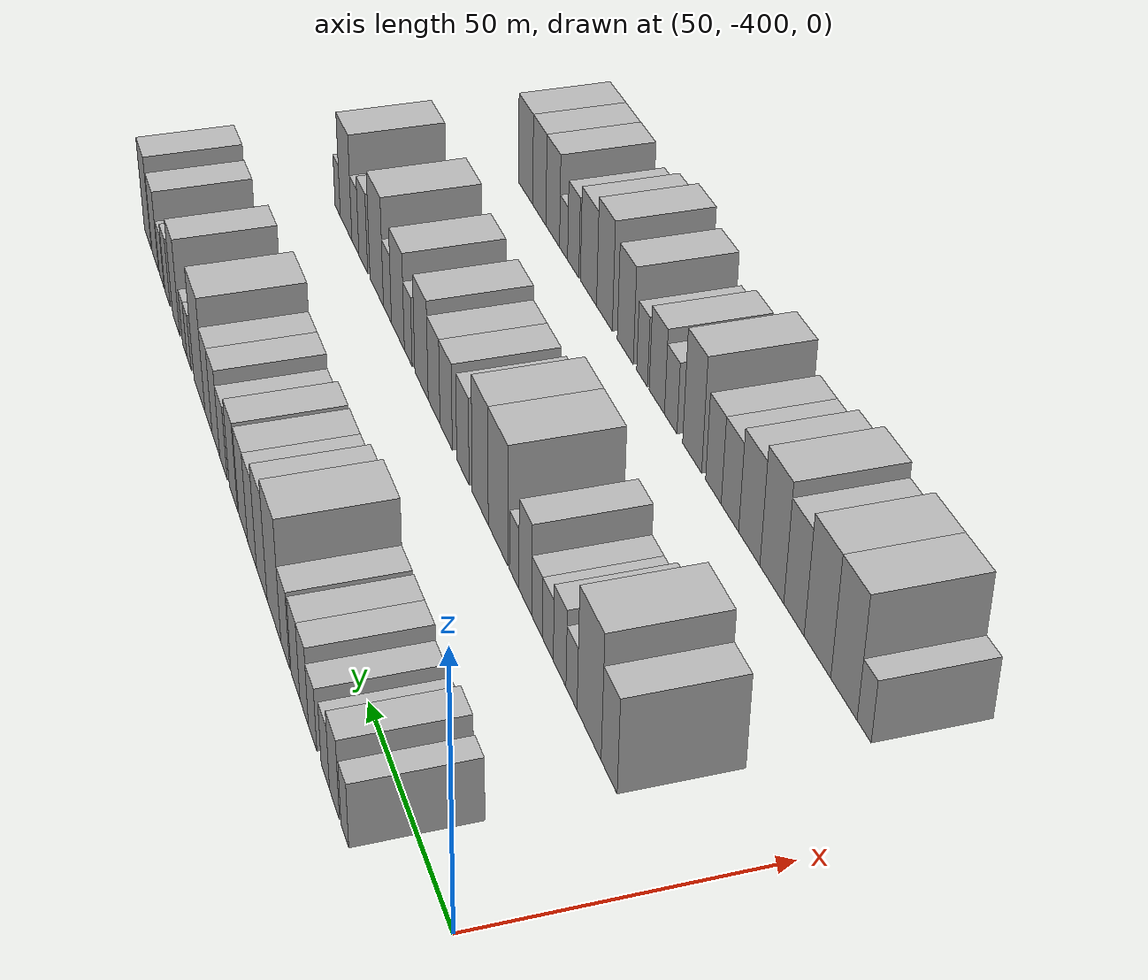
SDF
<sdf version="1.6">
 <world name="default">
  <model name="building_1">
   <static>1</static>
   <pose>50.0000 -377.5273 0 0.000000 0.000000 0.000000</pose>
   <link name="link">
    <pose>0 0 6.00 0 0 0</pose>
    <collision name="collision"><geometry><box><size>20.0000 4.9454 12.0000</size></box></geometry></collision>
    <visual name="visual">
     <cast_shadows>0</cast_shadows>
     <geometry><box><size>20.0000 4.9454 12.0000</size></box></geometry>
     <material>
      <script>
       <uri>model://HANNAS_wall/materials/scripts</uri>
       <uri>model://HANNAS_wall/materials/textures</uri>
       <name>vrc/HANNAS_wall</name>
      </script>
     </material>
    </visual>
   </link>
  </model>
  <model name="building_2">
   <static>1</static>
   <pose>50.0000 -370.7680 0 0.000000 0.000000 0.000000</pose>
   <link name="link">
    <pose>0 0 7.50 0 0 0</pose>
    <collision name="collision"><geometry><box><size>20.0000 6.5734 15.0000</size></box></geometry></collision>
    <visual name="visual">
     <cast_shadows>0</cast_shadows>
     <geometry><box><size>20.0000 6.5734 15.0000</size></box></geometry>
     <material>
      <script>
       <uri>model://HANNAS_wall/materials/scripts</uri>
       <uri>model://HANNAS_wall/materials/textures</uri>
       <name>vrc/HANNAS_wall</name>
      </script>
     </material>
    </visual>
   </link>
  </model>
  <model name="building_3">
   <static>1</static>
   <pose>50.0000 -364.6494 0 0.000000 0.000000 0.000000</pose>
   <link name="link">
    <pose>0 0 6.00 0 0 0</pose>
    <collision name="collision"><geometry><box><size>20.0000 5.6638 12.0000</size></box></geometry></collision>
    <visual name="visual">
     <cast_shadows>0</cast_shadows>
     <geometry><box><size>20.0000 5.6638 12.0000</size></box></geometry>
     <material>
      <script>
       <uri>model://HANNAS_wall/materials/scripts</uri>
       <uri>model://HANNAS_wall/materials/textures</uri>
       <name>vrc/HANNAS_wall</name>
      </script>
     </material>
    </visual>
   </link>
  </model>
  <model name="building_4">
   <static>1</static>
   <pose>50.0000 -355.8359 0 0.000000 0.000000 0.000000</pose>
   <link name="link">
    <pose>0 0 6.00 0 0 0</pose>
    <collision name="collision"><geometry><box><size>20.0000 5.9631 12.0000</size></box></geometry></collision>
    <visual name="visual">
     <cast_shadows>0</cast_shadows>
     <geometry><box><size>20.0000 5.9631 12.0000</size></box></geometry>
     <material>
      <script>
       <uri>model://HANNAS_wall/materials/scripts</uri>
       <uri>model://HANNAS_wall/materials/textures</uri>
       <name>vrc/HANNAS_wall</name>
      </script>
     </material>
    </visual>
   </link>
  </model>
  <model name="building_5">
   <static>1</static>
   <pose>50.0000 -349.7534 0 0.000000 0.000000 0.000000</pose>
   <link name="link">
    <pose>0 0 7.50 0 0 0</pose>
    <collision name="collision"><geometry><box><size>20.0000 6.2020 15.0000</size></box></geometry></collision>
    <visual name="visual">
     <cast_shadows>0</cast_shadows>
     <geometry><box><size>20.0000 6.2020 15.0000</size></box></geometry>
     <material>
      <script>
       <uri>model://HANNAS_wall/materials/scripts</uri>
       <uri>model://HANNAS_wall/materials/textures</uri>
       <name>vrc/HANNAS_wall</name>
      </script>
     </material>
    </visual>
   </link>
  </model>
  <model name="building_6">
   <static>1</static>
   <pose>50.0000 -343.3390 0 0.000000 0.000000 0.000000</pose>
   <link name="link">
    <pose>0 0 7.50 0 0 0</pose>
    <collision name="collision"><geometry><box><size>20.0000 6.6268 15.0000</size></box></geometry></collision>
    <visual name="visual">
     <cast_shadows>0</cast_shadows>
     <geometry><box><size>20.0000 6.6268 15.0000</size></box></geometry>
     <material>
      <script>
       <uri>model://HANNAS_wall/materials/scripts</uri>
       <uri>model://HANNAS_wall/materials/textures</uri>
       <name>vrc/HANNAS_wall</name>
      </script>
     </material>
    </visual>
   </link>
  </model>
  <model name="building_7">
   <static>1</static>
   <pose>50.0000 -335.6102 0 0.000000 0.000000 0.000000</pose>
   <link name="link">
    <pose>0 0 7.50 0 0 0</pose>
    <collision name="collision"><geometry><box><size>20.0000 6.8309 15.0000</size></box></geometry></collision>
    <visual name="visual">
     <cast_shadows>0</cast_shadows>
     <geometry><box><size>20.0000 6.8309 15.0000</size></box></geometry>
     <material>
      <script>
       <uri>model://HANNAS_wall/materials/scripts</uri>
       <uri>model://HANNAS_wall/materials/textures</uri>
       <name>vrc/HANNAS_wall</name>
      </script>
     </material>
    </visual>
   </link>
  </model>
  <model name="building_8">
   <static>1</static>
   <pose>50.0000 -326.6663 0 0.000000 0.000000 0.000000</pose>
   <link name="link">
    <pose>0 0 12.00 0 0 0</pose>
    <collision name="collision"><geometry><box><size>20.0000 11.0569 24.0000</size></box></geometry></collision>
    <visual name="visual">
     <cast_shadows>0</cast_shadows>
     <geometry><box><size>20.0000 11.0569 24.0000</size></box></geometry>
     <material>
      <script>
       <uri>model://HANNAS_wall/materials/scripts</uri>
       <uri>model://HANNAS_wall/materials/textures</uri>
       <name>vrc/HANNAS_wall</name>
      </script>
     </material>
    </visual>
   </link>
  </model>
  <model name="building_9">
   <static>1</static>
   <pose>50.0000 -316.6502 0 0.000000 0.000000 0.000000</pose>
   <link name="link">
    <pose>0 0 10.50 0 0 0</pose>
    <collision name="collision"><geometry><box><size>20.0000 8.9752 21.0000</size></box></geometry></collision>
    <visual name="visual">
     <cast_shadows>0</cast_shadows>
     <geometry><box><size>20.0000 8.9752 21.0000</size></box></geometry>
     <material>
      <script>
       <uri>model://HANNAS_wall/materials/scripts</uri>
       <uri>model://HANNAS_wall/materials/textures</uri>
       <name>vrc/HANNAS_wall</name>
      </script>
     </material>
    </visual>
   </link>
  </model>
  <model name="building_10">
   <static>1</static>
   <pose>50.0000 -308.2696 0 0.000000 0.000000 0.000000</pose>
   <link name="link">
    <pose>0 0 9.00 0 0 0</pose>
    <collision name="collision"><geometry><box><size>20.0000 7.7861 18.0000</size></box></geometry></collision>
    <visual name="visual">
     <cast_shadows>0</cast_shadows>
     <geometry><box><size>20.0000 7.7861 18.0000</size></box></geometry>
     <material>
      <script>
       <uri>model://HANNAS_wall/materials/scripts</uri>
       <uri>model://HANNAS_wall/materials/textures</uri>
       <name>vrc/HANNAS_wall</name>
      </script>
     </material>
    </visual>
   </link>
  </model>
  <model name="building_11">
   <static>1</static>
   <pose>50.0000 -300.3896 0 0.000000 0.000000 0.000000</pose>
   <link name="link">
    <pose>0 0 9.00 0 0 0</pose>
    <collision name="collision"><geometry><box><size>20.0000 7.9738 18.0000</size></box></geometry></collision>
    <visual name="visual">
     <cast_shadows>0</cast_shadows>
     <geometry><box><size>20.0000 7.9738 18.0000</size></box></geometry>
     <material>
      <script>
       <uri>model://HANNAS_wall/materials/scripts</uri>
       <uri>model://HANNAS_wall/materials/textures</uri>
       <name>vrc/HANNAS_wall</name>
      </script>
     </material>
    </visual>
   </link>
  </model>
  <model name="building_12">
   <static>1</static>
   <pose>50.0000 -291.4953 0 0.000000 0.000000 0.000000</pose>
   <link name="link">
    <pose>0 0 9.00 0 0 0</pose>
    <collision name="collision"><geometry><box><size>20.0000 7.8147 18.0000</size></box></geometry></collision>
    <visual name="visual">
     <cast_shadows>0</cast_shadows>
     <geometry><box><size>20.0000 7.8147 18.0000</size></box></geometry>
     <material>
      <script>
       <uri>model://HANNAS_wall/materials/scripts</uri>
       <uri>model://HANNAS_wall/materials/textures</uri>
       <name>vrc/HANNAS_wall</name>
      </script>
     </material>
    </visual>
   </link>
  </model>
  <model name="building_13">
   <static>1</static>
   <pose>50.0000 -282.0094 0 0.000000 0.000000 0.000000</pose>
   <link name="link">
    <pose>0 0 7.50 0 0 0</pose>
    <collision name="collision"><geometry><box><size>20.0000 7.1573 15.0000</size></box></geometry></collision>
    <visual name="visual">
     <cast_shadows>0</cast_shadows>
     <geometry><box><size>20.0000 7.1573 15.0000</size></box></geometry>
     <material>
      <script>
       <uri>model://HANNAS_wall/materials/scripts</uri>
       <uri>model://HANNAS_wall/materials/textures</uri>
       <name>vrc/HANNAS_wall</name>
      </script>
     </material>
    </visual>
   </link>
  </model>
  <model name="building_14">
   <static>1</static>
   <pose>50.0000 -274.5879 0 0.000000 0.000000 0.000000</pose>
   <link name="link">
    <pose>0 0 9.00 0 0 0</pose>
    <collision name="collision"><geometry><box><size>20.0000 7.6856 18.0000</size></box></geometry></collision>
    <visual name="visual">
     <cast_shadows>0</cast_shadows>
     <geometry><box><size>20.0000 7.6856 18.0000</size></box></geometry>
     <material>
      <script>
       <uri>model://HANNAS_wall/materials/scripts</uri>
       <uri>model://HANNAS_wall/materials/textures</uri>
       <name>vrc/HANNAS_wall</name>
      </script>
     </material>
    </visual>
   </link>
  </model>
  <model name="building_15">
   <static>1</static>
   <pose>50.0000 -267.0893 0 0.000000 0.000000 0.000000</pose>
   <link name="link">
    <pose>0 0 9.00 0 0 0</pose>
    <collision name="collision"><geometry><box><size>20.0000 7.3118 18.0000</size></box></geometry></collision>
    <visual name="visual">
     <cast_shadows>0</cast_shadows>
     <geometry><box><size>20.0000 7.3118 18.0000</size></box></geometry>
     <material>
      <script>
       <uri>model://HANNAS_wall/materials/scripts</uri>
       <uri>model://HANNAS_wall/materials/textures</uri>
       <name>vrc/HANNAS_wall</name>
      </script>
     </material>
    </visual>
   </link>
  </model>
  <model name="building_16">
   <static>1</static>
   <pose>50.0000 -257.5714 0 0.000000 0.000000 0.000000</pose>
   <link name="link">
    <pose>0 0 12.00 0 0 0</pose>
    <collision name="collision"><geometry><box><size>20.0000 11.7239 24.0000</size></box></geometry></collision>
    <visual name="visual">
     <cast_shadows>0</cast_shadows>
     <geometry><box><size>20.0000 11.7239 24.0000</size></box></geometry>
     <material>
      <script>
       <uri>model://HANNAS_wall/materials/scripts</uri>
       <uri>model://HANNAS_wall/materials/textures</uri>
       <name>vrc/HANNAS_wall</name>
      </script>
     </material>
    </visual>
   </link>
  </model>
  <model name="building_17">
   <static>1</static>
   <pose>50.0000 -246.2644 0 0.000000 0.000000 0.000000</pose>
   <link name="link">
    <pose>0 0 6.00 0 0 0</pose>
    <collision name="collision"><geometry><box><size>20.0000 4.8901 12.0000</size></box></geometry></collision>
    <visual name="visual">
     <cast_shadows>0</cast_shadows>
     <geometry><box><size>20.0000 4.8901 12.0000</size></box></geometry>
     <material>
      <script>
       <uri>model://HANNAS_wall/materials/scripts</uri>
       <uri>model://HANNAS_wall/materials/textures</uri>
       <name>vrc/HANNAS_wall</name>
      </script>
     </material>
    </visual>
   </link>
  </model>
  <model name="building_18">
   <static>1</static>
   <pose>50.0000 -241.3413 0 0.000000 0.000000 0.000000</pose>
   <link name="link">
    <pose>0 0 6.00 0 0 0</pose>
    <collision name="collision"><geometry><box><size>20.0000 4.9562 12.0000</size></box></geometry></collision>
    <visual name="visual">
     <cast_shadows>0</cast_shadows>
     <geometry><box><size>20.0000 4.9562 12.0000</size></box></geometry>
     <material>
      <script>
       <uri>model://HANNAS_wall/materials/scripts</uri>
       <uri>model://HANNAS_wall/materials/textures</uri>
       <name>vrc/HANNAS_wall</name>
      </script>
     </material>
    </visual>
   </link>
  </model>
  <model name="building_19">
   <static>1</static>
   <pose>50.0000 -231.6530 0 0.000000 0.000000 0.000000</pose>
   <link name="link">
    <pose>0 0 10.50 0 0 0</pose>
    <collision name="collision"><geometry><box><size>20.0000 8.4202 21.0000</size></box></geometry></collision>
    <visual name="visual">
     <cast_shadows>0</cast_shadows>
     <geometry><box><size>20.0000 8.4202 21.0000</size></box></geometry>
     <material>
      <script>
       <uri>model://HANNAS_wall/materials/scripts</uri>
       <uri>model://HANNAS_wall/materials/textures</uri>
       <name>vrc/HANNAS_wall</name>
      </script>
     </material>
    </visual>
   </link>
  </model>
  <model name="building_20">
   <static>1</static>
   <pose>50.0000 -221.2663 0 0.000000 0.000000 0.000000</pose>
   <link name="link">
    <pose>0 0 7.50 0 0 0</pose>
    <collision name="collision"><geometry><box><size>20.0000 6.3533 15.0000</size></box></geometry></collision>
    <visual name="visual">
     <cast_shadows>0</cast_shadows>
     <geometry><box><size>20.0000 6.3533 15.0000</size></box></geometry>
     <material>
      <script>
       <uri>model://HANNAS_wall/materials/scripts</uri>
       <uri>model://HANNAS_wall/materials/textures</uri>
       <name>vrc/HANNAS_wall</name>
      </script>
     </material>
    </visual>
   </link>
  </model>
  <model name="building_21">
   <static>1</static>
   <pose>50.0000 -214.2123 0 0.000000 0.000000 0.000000</pose>
   <link name="link">
    <pose>0 0 6.00 0 0 0</pose>
    <collision name="collision"><geometry><box><size>20.0000 5.7547 12.0000</size></box></geometry></collision>
    <visual name="visual">
     <cast_shadows>0</cast_shadows>
     <geometry><box><size>20.0000 5.7547 12.0000</size></box></geometry>
     <material>
      <script>
       <uri>model://HANNAS_wall/materials/scripts</uri>
       <uri>model://HANNAS_wall/materials/textures</uri>
       <name>vrc/HANNAS_wall</name>
      </script>
     </material>
    </visual>
   </link>
  </model>
  <model name="building_22">
   <static>1</static>
   <pose>50.0000 -206.1438 0 0.000000 0.000000 0.000000</pose>
   <link name="link">
    <pose>0 0 9.00 0 0 0</pose>
    <collision name="collision"><geometry><box><size>20.0000 8.3824 18.0000</size></box></geometry></collision>
    <visual name="visual">
     <cast_shadows>0</cast_shadows>
     <geometry><box><size>20.0000 8.3824 18.0000</size></box></geometry>
     <material>
      <script>
       <uri>model://HANNAS_wall/materials/scripts</uri>
       <uri>model://HANNAS_wall/materials/textures</uri>
       <name>vrc/HANNAS_wall</name>
      </script>
     </material>
    </visual>
   </link>
  </model>
  <model name="building_23">
   <static>1</static>
   <pose>50.0000 -196.3934 0 0.000000 0.000000 0.000000</pose>
   <link name="link">
    <pose>0 0 10.50 0 0 0</pose>
    <collision name="collision"><geometry><box><size>20.0000 9.1183 21.0000</size></box></geometry></collision>
    <visual name="visual">
     <cast_shadows>0</cast_shadows>
     <geometry><box><size>20.0000 9.1183 21.0000</size></box></geometry>
     <material>
      <script>
       <uri>model://HANNAS_wall/materials/scripts</uri>
       <uri>model://HANNAS_wall/materials/textures</uri>
       <name>vrc/HANNAS_wall</name>
      </script>
     </material>
    </visual>
   </link>
  </model>
  <model name="building_88">
   <static>1</static>
   <pose>90.0000 -376.2433 0 0.000000 0.000000 0.000000</pose>
   <link name="link">
    <pose>0 0 9.00 0 0 0</pose>
    <collision name="collision"><geometry><box><size>20.0000 7.5133 18.0000</size></box></geometry></collision>
    <visual name="visual">
     <cast_shadows>0</cast_shadows>
     <geometry><box><size>20.0000 7.5133 18.0000</size></box></geometry>
     <material>
      <script>
       <uri>model://HANNAS_wall/materials/scripts</uri>
       <uri>model://HANNAS_wall/materials/textures</uri>
       <name>vrc/HANNAS_wall</name>
      </script>
     </material>
    </visual>
   </link>
  </model>
  <model name="building_89">
   <static>1</static>
   <pose>90.0000 -366.6029 0 0.000000 0.000000 0.000000</pose>
   <link name="link">
    <pose>0 0 12.00 0 0 0</pose>
    <collision name="collision"><geometry><box><size>20.0000 11.7676 24.0000</size></box></geometry></collision>
    <visual name="visual">
     <cast_shadows>0</cast_shadows>
     <geometry><box><size>20.0000 11.7676 24.0000</size></box></geometry>
     <material>
      <script>
       <uri>model://HANNAS_wall/materials/scripts</uri>
       <uri>model://HANNAS_wall/materials/textures</uri>
       <name>vrc/HANNAS_wall</name>
      </script>
     </material>
    </visual>
   </link>
  </model>
  <model name="building_90">
   <static>1</static>
   <pose>90.0000 -357.8911 0 0.000000 0.000000 0.000000</pose>
   <link name="link">
    <pose>0 0 6.00 0 0 0</pose>
    <collision name="collision"><geometry><box><size>20.0000 5.6561 12.0000</size></box></geometry></collision>
    <visual name="visual">
     <cast_shadows>0</cast_shadows>
     <geometry><box><size>20.0000 5.6561 12.0000</size></box></geometry>
     <material>
      <script>
       <uri>model://HANNAS_wall/materials/scripts</uri>
       <uri>model://HANNAS_wall/materials/textures</uri>
       <name>vrc/HANNAS_wall</name>
      </script>
     </material>
    </visual>
   </link>
  </model>
  <model name="building_91">
   <static>1</static>
   <pose>90.0000 -351.7477 0 0.000000 0.000000 0.000000</pose>
   <link name="link">
    <pose>0 0 7.50 0 0 0</pose>
    <collision name="collision"><geometry><box><size>20.0000 6.6307 15.0000</size></box></geometry></collision>
    <visual name="visual">
     <cast_shadows>0</cast_shadows>
     <geometry><box><size>20.0000 6.6307 15.0000</size></box></geometry>
     <material>
      <script>
       <uri>model://HANNAS_wall/materials/scripts</uri>
       <uri>model://HANNAS_wall/materials/textures</uri>
       <name>vrc/HANNAS_wall</name>
      </script>
     </material>
    </visual>
   </link>
  </model>
  <model name="building_92">
   <static>1</static>
   <pose>90.0000 -345.4500 0 0.000000 0.000000 0.000000</pose>
   <link name="link">
    <pose>0 0 6.00 0 0 0</pose>
    <collision name="collision"><geometry><box><size>20.0000 5.9646 12.0000</size></box></geometry></collision>
    <visual name="visual">
     <cast_shadows>0</cast_shadows>
     <geometry><box><size>20.0000 5.9646 12.0000</size></box></geometry>
     <material>
      <script>
       <uri>model://HANNAS_wall/materials/scripts</uri>
       <uri>model://HANNAS_wall/materials/textures</uri>
       <name>vrc/HANNAS_wall</name>
      </script>
     </material>
    </visual>
   </link>
  </model>
  <model name="building_93">
   <static>1</static>
   <pose>90.0000 -339.5533 0 0.000000 0.000000 0.000000</pose>
   <link name="link">
    <pose>0 0 6.00 0 0 0</pose>
    <collision name="collision"><geometry><box><size>20.0000 5.8289 12.0000</size></box></geometry></collision>
    <visual name="visual">
     <cast_shadows>0</cast_shadows>
     <geometry><box><size>20.0000 5.8289 12.0000</size></box></geometry>
     <material>
      <script>
       <uri>model://HANNAS_wall/materials/scripts</uri>
       <uri>model://HANNAS_wall/materials/textures</uri>
       <name>vrc/HANNAS_wall</name>
      </script>
     </material>
    </visual>
   </link>
  </model>
  <model name="building_94">
   <static>1</static>
   <pose>90.0000 -333.0238 0 0.000000 0.000000 0.000000</pose>
   <link name="link">
    <pose>0 0 9.00 0 0 0</pose>
    <collision name="collision"><geometry><box><size>20.0000 7.2301 18.0000</size></box></geometry></collision>
    <visual name="visual">
     <cast_shadows>0</cast_shadows>
     <geometry><box><size>20.0000 7.2301 18.0000</size></box></geometry>
     <material>
      <script>
       <uri>model://HANNAS_wall/materials/scripts</uri>
       <uri>model://HANNAS_wall/materials/textures</uri>
       <name>vrc/HANNAS_wall</name>
      </script>
     </material>
    </visual>
   </link>
  </model>
  <model name="building_95">
   <static>1</static>
   <pose>90.0000 -326.6540 0 0.000000 0.000000 0.000000</pose>
   <link name="link">
    <pose>0 0 6.00 0 0 0</pose>
    <collision name="collision"><geometry><box><size>20.0000 5.5095 12.0000</size></box></geometry></collision>
    <visual name="visual">
     <cast_shadows>0</cast_shadows>
     <geometry><box><size>20.0000 5.5095 12.0000</size></box></geometry>
     <material>
      <script>
       <uri>model://HANNAS_wall/materials/scripts</uri>
       <uri>model://HANNAS_wall/materials/textures</uri>
       <name>vrc/HANNAS_wall</name>
      </script>
     </material>
    </visual>
   </link>
  </model>
  <model name="building_96">
   <static>1</static>
   <pose>90.0000 -317.0012 0 0.000000 0.000000 0.000000</pose>
   <link name="link">
    <pose>0 0 12.00 0 0 0</pose>
    <collision name="collision"><geometry><box><size>20.0000 11.7960 24.0000</size></box></geometry></collision>
    <visual name="visual">
     <cast_shadows>0</cast_shadows>
     <geometry><box><size>20.0000 11.7960 24.0000</size></box></geometry>
     <material>
      <script>
       <uri>model://HANNAS_wall/materials/scripts</uri>
       <uri>model://HANNAS_wall/materials/textures</uri>
       <name>vrc/HANNAS_wall</name>
      </script>
     </material>
    </visual>
   </link>
  </model>
  <model name="building_97">
   <static>1</static>
   <pose>90.0000 -305.9926 0 0.000000 0.000000 0.000000</pose>
   <link name="link">
    <pose>0 0 12.00 0 0 0</pose>
    <collision name="collision"><geometry><box><size>20.0000 10.2212 24.0000</size></box></geometry></collision>
    <visual name="visual">
     <cast_shadows>0</cast_shadows>
     <geometry><box><size>20.0000 10.2212 24.0000</size></box></geometry>
     <material>
      <script>
       <uri>model://HANNAS_wall/materials/scripts</uri>
       <uri>model://HANNAS_wall/materials/textures</uri>
       <name>vrc/HANNAS_wall</name>
      </script>
     </material>
    </visual>
   </link>
  </model>
  <model name="building_98">
   <static>1</static>
   <pose>90.0000 -294.7908 0 0.000000 0.000000 0.000000</pose>
   <link name="link">
    <pose>0 0 9.00 0 0 0</pose>
    <collision name="collision"><geometry><box><size>20.0000 8.1825 18.0000</size></box></geometry></collision>
    <visual name="visual">
     <cast_shadows>0</cast_shadows>
     <geometry><box><size>20.0000 8.1825 18.0000</size></box></geometry>
     <material>
      <script>
       <uri>model://HANNAS_wall/materials/scripts</uri>
       <uri>model://HANNAS_wall/materials/textures</uri>
       <name>vrc/HANNAS_wall</name>
      </script>
     </material>
    </visual>
   </link>
  </model>
  <model name="building_99">
   <static>1</static>
   <pose>90.0000 -283.4306 0 0.000000 0.000000 0.000000</pose>
   <link name="link">
    <pose>0 0 9.00 0 0 0</pose>
    <collision name="collision"><geometry><box><size>20.0000 8.5379 18.0000</size></box></geometry></collision>
    <visual name="visual">
     <cast_shadows>0</cast_shadows>
     <geometry><box><size>20.0000 8.5379 18.0000</size></box></geometry>
     <material>
      <script>
       <uri>model://HANNAS_wall/materials/scripts</uri>
       <uri>model://HANNAS_wall/materials/textures</uri>
       <name>vrc/HANNAS_wall</name>
      </script>
     </material>
    </visual>
   </link>
  </model>
  <model name="building_100">
   <static>1</static>
   <pose>90.0000 -274.9121 0 0.000000 0.000000 0.000000</pose>
   <link name="link">
    <pose>0 0 9.00 0 0 0</pose>
    <collision name="collision"><geometry><box><size>20.0000 8.4990 18.0000</size></box></geometry></collision>
    <visual name="visual">
     <cast_shadows>0</cast_shadows>
     <geometry><box><size>20.0000 8.4990 18.0000</size></box></geometry>
     <material>
      <script>
       <uri>model://HANNAS_wall/materials/scripts</uri>
       <uri>model://HANNAS_wall/materials/textures</uri>
       <name>vrc/HANNAS_wall</name>
      </script>
     </material>
    </visual>
   </link>
  </model>
  <model name="building_101">
   <static>1</static>
   <pose>90.0000 -265.7008 0 0.000000 0.000000 0.000000</pose>
   <link name="link">
    <pose>0 0 10.50 0 0 0</pose>
    <collision name="collision"><geometry><box><size>20.0000 9.9237 21.0000</size></box></geometry></collision>
    <visual name="visual">
     <cast_shadows>0</cast_shadows>
     <geometry><box><size>20.0000 9.9237 21.0000</size></box></geometry>
     <material>
      <script>
       <uri>model://HANNAS_wall/materials/scripts</uri>
       <uri>model://HANNAS_wall/materials/textures</uri>
       <name>vrc/HANNAS_wall</name>
      </script>
     </material>
    </visual>
   </link>
  </model>
  <model name="building_102">
   <static>1</static>
   <pose>90.0000 -255.7333 0 0.000000 0.000000 0.000000</pose>
   <link name="link">
    <pose>0 0 7.50 0 0 0</pose>
    <collision name="collision"><geometry><box><size>20.0000 6.0112 15.0000</size></box></geometry></collision>
    <visual name="visual">
     <cast_shadows>0</cast_shadows>
     <geometry><box><size>20.0000 6.0112 15.0000</size></box></geometry>
     <material>
      <script>
       <uri>model://HANNAS_wall/materials/scripts</uri>
       <uri>model://HANNAS_wall/materials/textures</uri>
       <name>vrc/HANNAS_wall</name>
      </script>
     </material>
    </visual>
   </link>
  </model>
  <model name="building_103">
   <static>1</static>
   <pose>90.0000 -247.6088 0 0.000000 0.000000 0.000000</pose>
   <link name="link">
    <pose>0 0 10.50 0 0 0</pose>
    <collision name="collision"><geometry><box><size>20.0000 10.2378 21.0000</size></box></geometry></collision>
    <visual name="visual">
     <cast_shadows>0</cast_shadows>
     <geometry><box><size>20.0000 10.2378 21.0000</size></box></geometry>
     <material>
      <script>
       <uri>model://HANNAS_wall/materials/scripts</uri>
       <uri>model://HANNAS_wall/materials/textures</uri>
       <name>vrc/HANNAS_wall</name>
      </script>
     </material>
    </visual>
   </link>
  </model>
  <model name="building_104">
   <static>1</static>
   <pose>90.0000 -239.2361 0 0.000000 0.000000 0.000000</pose>
   <link name="link">
    <pose>0 0 7.50 0 0 0</pose>
    <collision name="collision"><geometry><box><size>20.0000 6.5077 15.0000</size></box></geometry></collision>
    <visual name="visual">
     <cast_shadows>0</cast_shadows>
     <geometry><box><size>20.0000 6.5077 15.0000</size></box></geometry>
     <material>
      <script>
       <uri>model://HANNAS_wall/materials/scripts</uri>
       <uri>model://HANNAS_wall/materials/textures</uri>
       <name>vrc/HANNAS_wall</name>
      </script>
     </material>
    </visual>
   </link>
  </model>
  <model name="building_105">
   <static>1</static>
   <pose>90.0000 -230.2922 0 0.000000 0.000000 0.000000</pose>
   <link name="link">
    <pose>0 0 12.00 0 0 0</pose>
    <collision name="collision"><geometry><box><size>20.0000 11.3799 24.0000</size></box></geometry></collision>
    <visual name="visual">
     <cast_shadows>0</cast_shadows>
     <geometry><box><size>20.0000 11.3799 24.0000</size></box></geometry>
     <material>
      <script>
       <uri>model://HANNAS_wall/materials/scripts</uri>
       <uri>model://HANNAS_wall/materials/textures</uri>
       <name>vrc/HANNAS_wall</name>
      </script>
     </material>
    </visual>
   </link>
  </model>
  <model name="building_106">
   <static>1</static>
   <pose>90.0000 -218.7694 0 0.000000 0.000000 0.000000</pose>
   <link name="link">
    <pose>0 0 9.00 0 0 0</pose>
    <collision name="collision"><geometry><box><size>20.0000 7.6656 18.0000</size></box></geometry></collision>
    <visual name="visual">
     <cast_shadows>0</cast_shadows>
     <geometry><box><size>20.0000 7.6656 18.0000</size></box></geometry>
     <material>
      <script>
       <uri>model://HANNAS_wall/materials/scripts</uri>
       <uri>model://HANNAS_wall/materials/textures</uri>
       <name>vrc/HANNAS_wall</name>
      </script>
     </material>
    </visual>
   </link>
  </model>
  <model name="building_107">
   <static>1</static>
   <pose>90.0000 -211.7769 0 0.000000 0.000000 0.000000</pose>
   <link name="link">
    <pose>0 0 7.50 0 0 0</pose>
    <collision name="collision"><geometry><box><size>20.0000 6.3196 15.0000</size></box></geometry></collision>
    <visual name="visual">
     <cast_shadows>0</cast_shadows>
     <geometry><box><size>20.0000 6.3196 15.0000</size></box></geometry>
     <material>
      <script>
       <uri>model://HANNAS_wall/materials/scripts</uri>
       <uri>model://HANNAS_wall/materials/textures</uri>
       <name>vrc/HANNAS_wall</name>
      </script>
     </material>
    </visual>
   </link>
  </model>
  <model name="building_108">
   <static>1</static>
   <pose>90.0000 -203.2536 0 0.000000 0.000000 0.000000</pose>
   <link name="link">
    <pose>0 0 12.00 0 0 0</pose>
    <collision name="collision"><geometry><box><size>20.0000 10.7270 24.0000</size></box></geometry></collision>
    <visual name="visual">
     <cast_shadows>0</cast_shadows>
     <geometry><box><size>20.0000 10.7270 24.0000</size></box></geometry>
     <material>
      <script>
       <uri>model://HANNAS_wall/materials/scripts</uri>
       <uri>model://HANNAS_wall/materials/textures</uri>
       <name>vrc/HANNAS_wall</name>
      </script>
     </material>
    </visual>
   </link>
  </model>
  <model name="building_109">
   <static>1</static>
   <pose>90.0000 -195.3982 0 0.000000 0.000000 0.000000</pose>
   <link name="link">
    <pose>0 0 6.00 0 0 0</pose>
    <collision name="collision"><geometry><box><size>20.0000 4.9838 12.0000</size></box></geometry></collision>
    <visual name="visual">
     <cast_shadows>0</cast_shadows>
     <geometry><box><size>20.0000 4.9838 12.0000</size></box></geometry>
     <material>
      <script>
       <uri>model://HANNAS_wall/materials/scripts</uri>
       <uri>model://HANNAS_wall/materials/textures</uri>
       <name>vrc/HANNAS_wall</name>
      </script>
     </material>
    </visual>
   </link>
  </model>
  <model name="building_177">
   <static>1</static>
   <pose>130.0000 -377.3528 0 0.000000 0.000000 0.000000</pose>
   <link name="link">
    <pose>0 0 6.00 0 0 0</pose>
    <collision name="collision"><geometry><box><size>20.0000 5.2944 12.0000</size></box></geometry></collision>
    <visual name="visual">
     <cast_shadows>0</cast_shadows>
     <geometry><box><size>20.0000 5.2944 12.0000</size></box></geometry>
     <material>
      <script>
       <uri>model://HANNAS_wall/materials/scripts</uri>
       <uri>model://HANNAS_wall/materials/textures</uri>
       <name>vrc/HANNAS_wall</name>
      </script>
     </material>
    </visual>
   </link>
  </model>
  <model name="building_178">
   <static>1</static>
   <pose>130.0000 -369.5994 0 0.000000 0.000000 0.000000</pose>
   <link name="link">
    <pose>0 0 12.00 0 0 0</pose>
    <collision name="collision"><geometry><box><size>20.0000 10.2124 24.0000</size></box></geometry></collision>
    <visual name="visual">
     <cast_shadows>0</cast_shadows>
     <geometry><box><size>20.0000 10.2124 24.0000</size></box></geometry>
     <material>
      <script>
       <uri>model://HANNAS_wall/materials/scripts</uri>
       <uri>model://HANNAS_wall/materials/textures</uri>
       <name>vrc/HANNAS_wall</name>
      </script>
     </material>
    </visual>
   </link>
  </model>
  <model name="building_179">
   <static>1</static>
   <pose>130.0000 -359.0949 0 0.000000 0.000000 0.000000</pose>
   <link name="link">
    <pose>0 0 12.00 0 0 0</pose>
    <collision name="collision"><geometry><box><size>20.0000 10.7965 24.0000</size></box></geometry></collision>
    <visual name="visual">
     <cast_shadows>0</cast_shadows>
     <geometry><box><size>20.0000 10.7965 24.0000</size></box></geometry>
     <material>
      <script>
       <uri>model://HANNAS_wall/materials/scripts</uri>
       <uri>model://HANNAS_wall/materials/textures</uri>
       <name>vrc/HANNAS_wall</name>
      </script>
     </material>
    </visual>
   </link>
  </model>
  <model name="building_180">
   <static>1</static>
   <pose>130.0000 -349.3701 0 0.000000 0.000000 0.000000</pose>
   <link name="link">
    <pose>0 0 10.50 0 0 0</pose>
    <collision name="collision"><geometry><box><size>20.0000 8.6531 21.0000</size></box></geometry></collision>
    <visual name="visual">
     <cast_shadows>0</cast_shadows>
     <geometry><box><size>20.0000 8.6531 21.0000</size></box></geometry>
     <material>
      <script>
       <uri>model://HANNAS_wall/materials/scripts</uri>
       <uri>model://HANNAS_wall/materials/textures</uri>
       <name>vrc/HANNAS_wall</name>
      </script>
     </material>
    </visual>
   </link>
  </model>
  <model name="building_181">
   <static>1</static>
   <pose>130.0000 -339.7732 0 0.000000 0.000000 0.000000</pose>
   <link name="link">
    <pose>0 0 12.00 0 0 0</pose>
    <collision name="collision"><geometry><box><size>20.0000 10.5407 24.0000</size></box></geometry></collision>
    <visual name="visual">
     <cast_shadows>0</cast_shadows>
     <geometry><box><size>20.0000 10.5407 24.0000</size></box></geometry>
     <material>
      <script>
       <uri>model://HANNAS_wall/materials/scripts</uri>
       <uri>model://HANNAS_wall/materials/textures</uri>
       <name>vrc/HANNAS_wall</name>
      </script>
     </material>
    </visual>
   </link>
  </model>
  <model name="building_182">
   <static>1</static>
   <pose>130.0000 -329.5832 0 0.000000 0.000000 0.000000</pose>
   <link name="link">
    <pose>0 0 10.50 0 0 0</pose>
    <collision name="collision"><geometry><box><size>20.0000 9.8393 21.0000</size></box></geometry></collision>
    <visual name="visual">
     <cast_shadows>0</cast_shadows>
     <geometry><box><size>20.0000 9.8393 21.0000</size></box></geometry>
     <material>
      <script>
       <uri>model://HANNAS_wall/materials/scripts</uri>
       <uri>model://HANNAS_wall/materials/textures</uri>
       <name>vrc/HANNAS_wall</name>
      </script>
     </material>
    </visual>
   </link>
  </model>
  <model name="building_183">
   <static>1</static>
   <pose>130.0000 -320.5065 0 0.000000 0.000000 0.000000</pose>
   <link name="link">
    <pose>0 0 9.00 0 0 0</pose>
    <collision name="collision"><geometry><box><size>20.0000 8.3141 18.0000</size></box></geometry></collision>
    <visual name="visual">
     <cast_shadows>0</cast_shadows>
     <geometry><box><size>20.0000 8.3141 18.0000</size></box></geometry>
     <material>
      <script>
       <uri>model://HANNAS_wall/materials/scripts</uri>
       <uri>model://HANNAS_wall/materials/textures</uri>
       <name>vrc/HANNAS_wall</name>
      </script>
     </material>
    </visual>
   </link>
  </model>
  <model name="building_184">
   <static>1</static>
   <pose>130.0000 -312.5033 0 0.000000 0.000000 0.000000</pose>
   <link name="link">
    <pose>0 0 9.00 0 0 0</pose>
    <collision name="collision"><geometry><box><size>20.0000 7.6923 18.0000</size></box></geometry></collision>
    <visual name="visual">
     <cast_shadows>0</cast_shadows>
     <geometry><box><size>20.0000 7.6923 18.0000</size></box></geometry>
     <material>
      <script>
       <uri>model://HANNAS_wall/materials/scripts</uri>
       <uri>model://HANNAS_wall/materials/textures</uri>
       <name>vrc/HANNAS_wall</name>
      </script>
     </material>
    </visual>
   </link>
  </model>
  <model name="building_185">
   <static>1</static>
   <pose>130.0000 -301.7544 0 0.000000 0.000000 0.000000</pose>
   <link name="link">
    <pose>0 0 12.00 0 0 0</pose>
    <collision name="collision"><geometry><box><size>20.0000 9.8055 24.0000</size></box></geometry></collision>
    <visual name="visual">
     <cast_shadows>0</cast_shadows>
     <geometry><box><size>20.0000 9.8055 24.0000</size></box></geometry>
     <material>
      <script>
       <uri>model://HANNAS_wall/materials/scripts</uri>
       <uri>model://HANNAS_wall/materials/textures</uri>
       <name>vrc/HANNAS_wall</name>
      </script>
     </material>
    </visual>
   </link>
  </model>
  <model name="building_186">
   <static>1</static>
   <pose>130.0000 -290.4895 0 0.000000 0.000000 0.000000</pose>
   <link name="link">
    <pose>0 0 7.50 0 0 0</pose>
    <collision name="collision"><geometry><box><size>20.0000 6.7242 15.0000</size></box></geometry></collision>
    <visual name="visual">
     <cast_shadows>0</cast_shadows>
     <geometry><box><size>20.0000 6.7242 15.0000</size></box></geometry>
     <material>
      <script>
       <uri>model://HANNAS_wall/materials/scripts</uri>
       <uri>model://HANNAS_wall/materials/textures</uri>
       <name>vrc/HANNAS_wall</name>
      </script>
     </material>
    </visual>
   </link>
  </model>
  <model name="building_187">
   <static>1</static>
   <pose>130.0000 -282.8909 0 0.000000 0.000000 0.000000</pose>
   <link name="link">
    <pose>0 0 9.00 0 0 0</pose>
    <collision name="collision"><geometry><box><size>20.0000 8.4730 18.0000</size></box></geometry></collision>
    <visual name="visual">
     <cast_shadows>0</cast_shadows>
     <geometry><box><size>20.0000 8.4730 18.0000</size></box></geometry>
     <material>
      <script>
       <uri>model://HANNAS_wall/materials/scripts</uri>
       <uri>model://HANNAS_wall/materials/textures</uri>
       <name>vrc/HANNAS_wall</name>
      </script>
     </material>
    </visual>
   </link>
  </model>
  <model name="building_188">
   <static>1</static>
   <pose>130.0000 -274.6017 0 0.000000 0.000000 0.000000</pose>
   <link name="link">
    <pose>0 0 7.50 0 0 0</pose>
    <collision name="collision"><geometry><box><size>20.0000 6.1054 15.0000</size></box></geometry></collision>
    <visual name="visual">
     <cast_shadows>0</cast_shadows>
     <geometry><box><size>20.0000 6.1054 15.0000</size></box></geometry>
     <material>
      <script>
       <uri>model://HANNAS_wall/materials/scripts</uri>
       <uri>model://HANNAS_wall/materials/textures</uri>
       <name>vrc/HANNAS_wall</name>
      </script>
     </material>
    </visual>
   </link>
  </model>
  <model name="building_189">
   <static>1</static>
   <pose>130.0000 -264.8092 0 0.000000 0.000000 0.000000</pose>
   <link name="link">
    <pose>0 0 10.50 0 0 0</pose>
    <collision name="collision"><geometry><box><size>20.0000 9.4796 21.0000</size></box></geometry></collision>
    <visual name="visual">
     <cast_shadows>0</cast_shadows>
     <geometry><box><size>20.0000 9.4796 21.0000</size></box></geometry>
     <material>
      <script>
       <uri>model://HANNAS_wall/materials/scripts</uri>
       <uri>model://HANNAS_wall/materials/textures</uri>
       <name>vrc/HANNAS_wall</name>
      </script>
     </material>
    </visual>
   </link>
  </model>
  <model name="building_190">
   <static>1</static>
   <pose>130.0000 -252.1814 0 0.000000 0.000000 0.000000</pose>
   <link name="link">
    <pose>0 0 12.00 0 0 0</pose>
    <collision name="collision"><geometry><box><size>20.0000 9.7760 24.0000</size></box></geometry></collision>
    <visual name="visual">
     <cast_shadows>0</cast_shadows>
     <geometry><box><size>20.0000 9.7760 24.0000</size></box></geometry>
     <material>
      <script>
       <uri>model://HANNAS_wall/materials/scripts</uri>
       <uri>model://HANNAS_wall/materials/textures</uri>
       <name>vrc/HANNAS_wall</name>
      </script>
     </material>
    </visual>
   </link>
  </model>
  <model name="building_191">
   <static>1</static>
   <pose>130.0000 -242.1039 0 0.000000 0.000000 0.000000</pose>
   <link name="link">
    <pose>0 0 10.50 0 0 0</pose>
    <collision name="collision"><geometry><box><size>20.0000 10.3791 21.0000</size></box></geometry></collision>
    <visual name="visual">
     <cast_shadows>0</cast_shadows>
     <geometry><box><size>20.0000 10.3791 21.0000</size></box></geometry>
     <material>
      <script>
       <uri>model://HANNAS_wall/materials/scripts</uri>
       <uri>model://HANNAS_wall/materials/textures</uri>
       <name>vrc/HANNAS_wall</name>
      </script>
     </material>
    </visual>
   </link>
  </model>
  <model name="building_192">
   <static>1</static>
   <pose>130.0000 -232.1643 0 0.000000 0.000000 0.000000</pose>
   <link name="link">
    <pose>0 0 9.00 0 0 0</pose>
    <collision name="collision"><geometry><box><size>20.0000 7.5000 18.0000</size></box></geometry></collision>
    <visual name="visual">
     <cast_shadows>0</cast_shadows>
     <geometry><box><size>20.0000 7.5000 18.0000</size></box></geometry>
     <material>
      <script>
       <uri>model://HANNAS_wall/materials/scripts</uri>
       <uri>model://HANNAS_wall/materials/textures</uri>
       <name>vrc/HANNAS_wall</name>
      </script>
     </material>
    </visual>
   </link>
  </model>
  <model name="building_193">
   <static>1</static>
   <pose>130.0000 -225.6796 0 0.000000 0.000000 0.000000</pose>
   <link name="link">
    <pose>0 0 6.00 0 0 0</pose>
    <collision name="collision"><geometry><box><size>20.0000 5.4693 12.0000</size></box></geometry></collision>
    <visual name="visual">
     <cast_shadows>0</cast_shadows>
     <geometry><box><size>20.0000 5.4693 12.0000</size></box></geometry>
     <material>
      <script>
       <uri>model://HANNAS_wall/materials/scripts</uri>
       <uri>model://HANNAS_wall/materials/textures</uri>
       <name>vrc/HANNAS_wall</name>
      </script>
     </material>
    </visual>
   </link>
  </model>
  <model name="building_194">
   <static>1</static>
   <pose>130.0000 -218.2156 0 0.000000 0.000000 0.000000</pose>
   <link name="link">
    <pose>0 0 10.50 0 0 0</pose>
    <collision name="collision"><geometry><box><size>20.0000 9.4587 21.0000</size></box></geometry></collision>
    <visual name="visual">
     <cast_shadows>0</cast_shadows>
     <geometry><box><size>20.0000 9.4587 21.0000</size></box></geometry>
     <material>
      <script>
       <uri>model://HANNAS_wall/materials/scripts</uri>
       <uri>model://HANNAS_wall/materials/textures</uri>
       <name>vrc/HANNAS_wall</name>
      </script>
     </material>
    </visual>
   </link>
  </model>
  <model name="building_195">
   <static>1</static>
   <pose>130.0000 -208.7497 0 0.000000 0.000000 0.000000</pose>
   <link name="link">
    <pose>0 0 10.50 0 0 0</pose>
    <collision name="collision"><geometry><box><size>20.0000 9.4732 21.0000</size></box></geometry></collision>
    <visual name="visual">
     <cast_shadows>0</cast_shadows>
     <geometry><box><size>20.0000 9.4732 21.0000</size></box></geometry>
     <material>
      <script>
       <uri>model://HANNAS_wall/materials/scripts</uri>
       <uri>model://HANNAS_wall/materials/textures</uri>
       <name>vrc/HANNAS_wall</name>
      </script>
     </material>
    </visual>
   </link>
  </model>
  <model name="building_196">
   <static>1</static>
   <pose>130.0000 -198.8215 0 0.000000 0.000000 0.000000</pose>
   <link name="link">
    <pose>0 0 10.50 0 0 0</pose>
    <collision name="collision"><geometry><box><size>20.0000 10.3832 21.0000</size></box></geometry></collision>
    <visual name="visual">
     <cast_shadows>0</cast_shadows>
     <geometry><box><size>20.0000 10.3832 21.0000</size></box></geometry>
     <material>
      <script>
       <uri>model://HANNAS_wall/materials/scripts</uri>
       <uri>model://HANNAS_wall/materials/textures</uri>
       <name>vrc/HANNAS_wall</name>
      </script>
     </material>
    </visual>
   </link>
  </model>
 </world>
</sdf>
